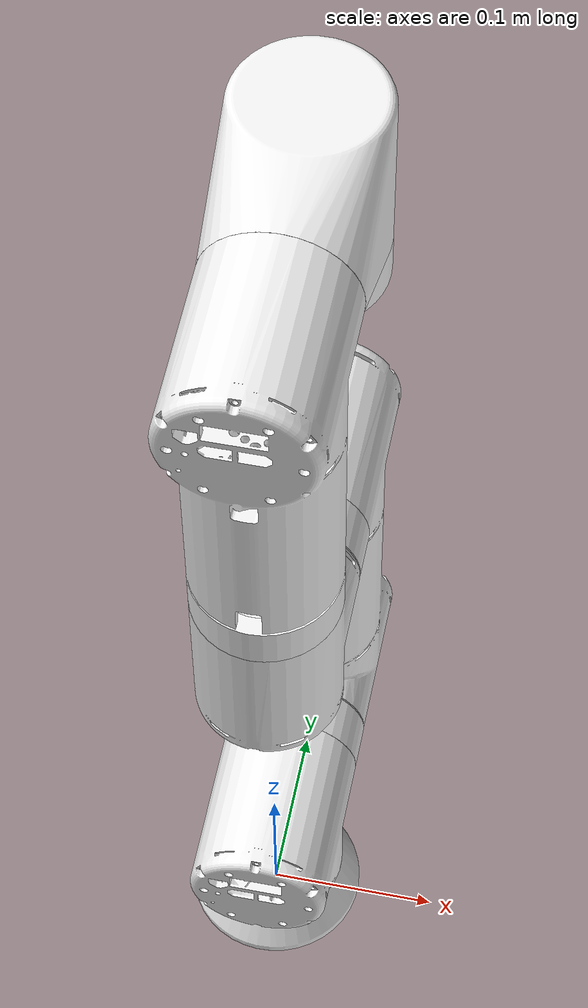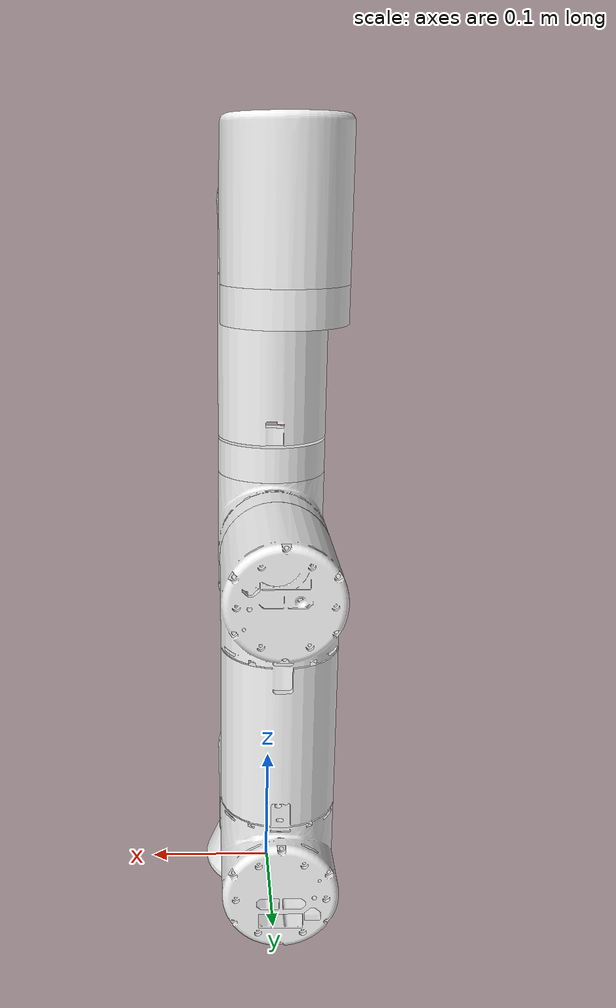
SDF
<sdf version='1.9'>
  <model name='pro_arm_5dof_550'>
    <joint name='pro_arm_base_joint' type='fixed'>
      <pose relative_to='__model__'>0 0 0 0 0 0</pose>
      <parent>world</parent>
      <child>pro_arm_base_link</child>
    </joint>
    <link name='pro_arm_base_link'>
      <pose relative_to='pro_arm_base_joint'>0 0 0 0 0 0</pose>
      <inertial>
        <pose>1.2874e-07 0.0085272 1.7438e-08 0 0 0</pose>
        <mass>0.082068000000000002</mass>
        <inertia>
          <ixx>7.6600999999999994e-05</ixx>
          <ixy>-1.2905000000000001e-10</ixy>
          <ixz>6.9943000000000006e-11</ixz>
          <iyy>0.00014336000000000001</iyy>
          <iyz>-2.3647999999999999e-11</iyz>
          <izz>7.6600000000000005e-05</izz>
        </inertia>
      </inertial>
      <collision name='pro_arm_base_link_collision'>
        <pose>0 0 0 0 0 0</pose>
        <geometry>
          <mesh>
            <scale>1 1 1</scale>
            <uri>meshes_550/collision/pro_arm_base_link.STL</uri>
          </mesh>
        </geometry>
        <surface>
          <contact>
            <ode/>
          </contact>
          <friction>
            <ode>
              <mu>0.29999999999999999</mu>
              <mu2>0.29999999999999999</mu2>
            </ode>
          </friction>
        </surface>
      </collision>
      <visual name='pro_arm_base_link_visual'>
        <pose>0 0 0 0 0 0</pose>
        <geometry>
          <mesh>
            <scale>1 1 1</scale>
            <uri>meshes_550/visual/pro_arm_base_link.STL</uri>
          </mesh>
        </geometry>
        <material>
          <diffuse>0.941175 0.941175 0.941175 1</diffuse>
          <ambient>0.941175 0.941175 0.941175 1</ambient>
        </material>
      </visual>
    </link>
    <joint name='pro_arm_joint_1' type='revolute'>
      <pose relative_to='pro_arm_base_link'>0 0 0.0315 -1.570792653576406 1.570792653605768 3.141592653589793</pose>
      <parent>pro_arm_base_link</parent>
      <child>pro_arm_link_1</child>
      <axis>
        <xyz>1 0 0</xyz>
        <limit>
          <lower>-3.1415926535897931</lower>
          <upper>3.1415926535897931</upper>
          <effort>54</effort>
          <velocity>0.78539999999999999</velocity>
        </limit>
        <dynamics>
          <damping>0.10000000000000001</damping>
          <friction>0.5</friction>
          <spring_reference>0</spring_reference>
          <spring_stiffness>0</spring_stiffness>
        </dynamics>
      </axis>
      <physics>
        <ode>
          <limit>
            <cfm>0</cfm>
            <erp>0.20000000000000001</erp>
          </limit>
        </ode>
      </physics>
    </joint>
    <link name='pro_arm_link_1'>
      <pose relative_to='pro_arm_joint_1'>0 0 0 0 0 0</pose>
      <inertial>
        <pose>-0.04167 -4.7565e-05 0.00324 0 0 0</pose>
        <mass>1.52</mass>
        <inertia>
          <ixx>0.00014346000000000001</ixx>
          <ixy>-4.3176999999999997e-08</ixy>
          <ixz>1.3566000000000001e-06</ixz>
          <iyy>0.00012596999999999999</iyy>
          <iyz>-1.5203999999999998e-08</iyz>
          <izz>0.00014254</izz>
        </inertia>
      </inertial>
      <collision name='pro_arm_link_1_collision'>
        <pose>0 0 0 0 0 0</pose>
        <geometry>
          <mesh>
            <scale>1 1 1</scale>
            <uri>meshes_550/collision/pro_arm_link_1.STL</uri>
          </mesh>
        </geometry>
        <surface>
          <contact>
            <ode/>
          </contact>
          <friction>
            <ode>
              <mu>0.29999999999999999</mu>
              <mu2>0.29999999999999999</mu2>
            </ode>
          </friction>
        </surface>
      </collision>
      <visual name='pro_arm_link_1_visual'>
        <pose>0 0 0 0 0 0</pose>
        <geometry>
          <mesh>
            <scale>1 1 1</scale>
            <uri>meshes_550/visual/pro_arm_link_1.STL</uri>
          </mesh>
        </geometry>
        <material>
          <diffuse>0.941175 0.941175 0.941175 1</diffuse>
          <ambient>0.941175 0.941175 0.941175 1</ambient>
        </material>
      </visual>
    </link>
    <joint name='pro_arm_joint_2' type='revolute'>
      <pose relative_to='pro_arm_link_1'>-0.05 0 -0.045583 -2.356192653568856 1.570792653635993 -1.570792653561293</pose>
      <parent>pro_arm_link_1</parent>
      <child>pro_arm_link_2</child>
      <axis>
        <xyz>1 0 0</xyz>
        <limit>
          <lower>-1.570796326794897</lower>
          <upper>1.570796326794897</upper>
          <effort>54</effort>
          <velocity>0.78539999999999999</velocity>
        </limit>
        <dynamics>
          <damping>0.10000000000000001</damping>
          <friction>0.5</friction>
          <spring_reference>0</spring_reference>
          <spring_stiffness>0</spring_stiffness>
        </dynamics>
      </axis>
      <physics>
        <ode>
          <limit>
            <cfm>0</cfm>
            <erp>0.20000000000000001</erp>
          </limit>
        </ode>
      </physics>
    </joint>
    <link name='pro_arm_link_2'>
      <pose relative_to='pro_arm_joint_2'>0 0 0 0 0 0</pose>
      <inertial>
        <pose>0.11278 0.068036 -0.06789100000000001 0 0 0</pose>
        <mass>3.1000000000000001</mass>
        <inertia>
          <ixx>0.00069567999999999995</ixx>
          <ixy>-1.3919000000000001e-10</ixy>
          <ixz>-4.9213000000000004e-10</ixz>
          <iyy>0.00059931000000000003</iyy>
          <iyz>1.5313999999999999e-05</iyz>
          <izz>0.00059896999999999999</izz>
        </inertia>
      </inertial>
      <collision name='pro_arm_link_2_collision'>
        <pose>0 0 0 0 0 0</pose>
        <geometry>
          <mesh>
            <scale>1 1 1</scale>
            <uri>meshes_550/collision/pro_arm_link_2.STL</uri>
          </mesh>
        </geometry>
        <surface>
          <contact>
            <ode/>
          </contact>
          <friction>
            <ode>
              <mu>0.29999999999999999</mu>
              <mu2>0.29999999999999999</mu2>
            </ode>
          </friction>
        </surface>
      </collision>
      <visual name='pro_arm_link_2_visual'>
        <pose>0 0 0 0 0 0</pose>
        <geometry>
          <mesh>
            <scale>1 1 1</scale>
            <uri>meshes_550/visual/pro_arm_link_2.STL</uri>
          </mesh>
        </geometry>
        <material>
          <diffuse>0.941175 0.941175 0.941175 1</diffuse>
          <ambient>0.941175 0.941175 0.941175 1</ambient>
        </material>
      </visual>
    </link>
    <joint name='pro_arm_joint_3' type='revolute'>
      <pose relative_to='pro_arm_link_2'>0 0.1591 -0.1591 1.5511 0 0</pose>
      <parent>pro_arm_link_2</parent>
      <child>pro_arm_link_3</child>
      <axis>
        <xyz>1 0 0</xyz>
        <limit>
          <lower>-2.0943951023931948</lower>
          <upper>2.0943951023931948</upper>
          <effort>54</effort>
          <velocity>0.78539999999999999</velocity>
        </limit>
        <dynamics>
          <damping>0.10000000000000001</damping>
          <friction>0.5</friction>
          <spring_reference>0</spring_reference>
          <spring_stiffness>0</spring_stiffness>
        </dynamics>
      </axis>
      <physics>
        <ode>
          <limit>
            <cfm>0</cfm>
            <erp>0.20000000000000001</erp>
          </limit>
        </ode>
      </physics>
    </joint>
    <link name='pro_arm_link_3'>
      <pose relative_to='pro_arm_joint_3'>0 0 0 0 0 0</pose>
      <inertial>
        <pose>-0.00969205882352941 0.04713268529411765 0.04904268823529413 0 0 0</pose>
        <mass>2.7200000000000002</mass>
        <inertia>
          <ixx>0.01762893189011823</ixx>
          <ixy>0.0058169771822503538</ixy>
          <ixz>0.0060681857174098826</ixz>
          <iyy>0.01365467066820941</iyy>
          <iyz>-0.0084282645144275279</iyz>
          <izz>0.012941220753986</izz>
        </inertia>
      </inertial>
      <collision name='pro_arm_link_3_collision'>
        <pose>0 0 0 0 0 0</pose>
        <geometry>
          <mesh>
            <scale>1 1 1</scale>
            <uri>meshes_550/collision/pro_arm_link_3.STL</uri>
          </mesh>
        </geometry>
        <surface>
          <contact>
            <ode/>
          </contact>
          <friction>
            <ode>
              <mu>0.29999999999999999</mu>
              <mu2>0.29999999999999999</mu2>
            </ode>
          </friction>
        </surface>
      </collision>
      <collision name='pro_arm_link_3_fixed_joint_lump__pro_arm_link_4_collision_1'>
        <pose>-0.05 0 0 0 0 0</pose>
        <geometry>
          <mesh>
            <scale>1 1 1</scale>
            <uri>meshes_550/collision/pro_arm_link_4.STL</uri>
          </mesh>
        </geometry>
        <surface>
          <contact>
            <ode/>
          </contact>
          <friction>
            <ode>
              <mu>0.29999999999999999</mu>
              <mu2>0.29999999999999999</mu2>
            </ode>
          </friction>
        </surface>
      </collision>
      <visual name='pro_arm_link_3_visual'>
        <pose>0 0 0 0 0 0</pose>
        <geometry>
          <mesh>
            <scale>1 1 1</scale>
            <uri>meshes_550/visual/pro_arm_link_3.STL</uri>
          </mesh>
        </geometry>
        <material>
          <diffuse>0.941175 0.941175 0.941175 1</diffuse>
          <ambient>0.941175 0.941175 0.941175 1</ambient>
        </material>
      </visual>
      <visual name='pro_arm_link_3_fixed_joint_lump__pro_arm_link_4_visual_1'>
        <pose>-0.05 0 0 0 0 0</pose>
        <geometry>
          <mesh>
            <scale>1 1 1</scale>
            <uri>meshes_550/visual/pro_arm_link_4.STL</uri>
          </mesh>
        </geometry>
        <material>
          <diffuse>0.941175 0.941175 0.941175 1</diffuse>
          <ambient>0.941175 0.941175 0.941175 1</ambient>
        </material>
      </visual>
    </link>
    <joint name='pro_arm_joint_5' type='revolute'>
      <pose relative_to='pro_arm_link_3'>-0.001583000000000001 -0.17257 -0.1795 0.80509 0 0</pose>
      <parent>pro_arm_link_3</parent>
      <child>pro_arm_link_5</child>
      <axis>
        <xyz>1 0 0</xyz>
        <limit>
          <lower>-3.1415926535897931</lower>
          <upper>3.1415926535897931</upper>
          <effort>19</effort>
          <velocity>0.78539999999999999</velocity>
        </limit>
        <dynamics>
          <damping>0.10000000000000001</damping>
          <friction>0.5</friction>
          <spring_reference>0</spring_reference>
          <spring_stiffness>0</spring_stiffness>
        </dynamics>
      </axis>
      <physics>
        <ode>
          <limit>
            <cfm>0</cfm>
            <erp>0.20000000000000001</erp>
          </limit>
        </ode>
      </physics>
    </joint>
    <link name='pro_arm_link_5'>
      <pose relative_to='pro_arm_joint_5'>0 0 0 0 0 0</pose>
      <inertial>
        <pose>-0.0057446 1 -3.2832e-05 0 0 0</pose>
        <mass>1.1000000000000001</mass>
        <inertia>
          <ixx>0.00024824999999999999</ixx>
          <ixy>-1.2711e-06</ixy>
          <ixz>3.0302999999999997e-08</ixz>
          <iyy>0.00019935999999999999</iyy>
          <iyz>-3.9256999999999999e-08</iyz>
          <izz>0.00018289000000000001</izz>
        </inertia>
      </inertial>
      <collision name='pro_arm_link_5_collision'>
        <pose>0 0 0 0 0 0</pose>
        <geometry>
          <mesh>
            <scale>1 1 1</scale>
            <uri>meshes_550/collision/pro_arm_link_5.STL</uri>
          </mesh>
        </geometry>
        <surface>
          <contact>
            <ode/>
          </contact>
          <friction>
            <ode>
              <mu>0.29999999999999999</mu>
              <mu2>0.29999999999999999</mu2>
            </ode>
          </friction>
        </surface>
      </collision>
      <visual name='pro_arm_link_5_visual'>
        <pose>0 0 0 0 0 0</pose>
        <geometry>
          <mesh>
            <scale>1 1 1</scale>
            <uri>meshes_550/visual/pro_arm_link_5.STL</uri>
          </mesh>
        </geometry>
        <material>
          <diffuse>0.941175 0.941175 0.941175 1</diffuse>
          <ambient>0.941175 0.941175 0.941175 1</ambient>
        </material>
      </visual>
    </link>
    <joint name='pro_arm_joint_6' type='revolute'>
      <pose relative_to='pro_arm_link_5'>0.076 0.048 0 -1.570792653617749 1.570792653666219 -1.570792653625737</pose>
      <parent>pro_arm_link_5</parent>
      <child>pro_arm_link_6</child>
      <axis>
        <xyz>0 1 0</xyz>
        <limit>
          <lower>-3.1415926535897931</lower>
          <upper>3.1415926535897931</upper>
          <effort>19</effort>
          <velocity>0.78539999999999999</velocity>
        </limit>
        <dynamics>
          <damping>0.10000000000000001</damping>
          <friction>0.5</friction>
          <spring_reference>0</spring_reference>
          <spring_stiffness>0</spring_stiffness>
        </dynamics>
      </axis>
      <physics>
        <ode>
          <limit>
            <cfm>0</cfm>
            <erp>0.20000000000000001</erp>
          </limit>
        </ode>
      </physics>
    </joint>
    <link name='pro_arm_link_6'>
      <pose relative_to='pro_arm_joint_6'>0 0 0 0 0 0</pose>
      <inertial>
        <pose>3.5805e-15 0.0125 0.00019576 0 0 0</pose>
        <mass>0.080000000000000002</mass>
        <inertia>
          <ixx>5.4307e-05</ixx>
          <ixy>-1.1438e-20</ixy>
          <ixz>1.3528999999999999e-17</ixz>
          <iyy>0.00010076</iyy>
          <iyz>-1.6647999999999999e-22</iyz>
          <izz>5.4873000000000001e-05</izz>
        </inertia>
      </inertial>
      <collision name='pro_arm_link_6_collision'>
        <pose>0 0 0 0 0 0</pose>
        <geometry>
          <mesh>
            <scale>1 1 1</scale>
            <uri>meshes_550/collision/pro_arm_link_6.STL</uri>
          </mesh>
        </geometry>
        <surface>
          <contact>
            <ode/>
          </contact>
          <friction>
            <ode>
              <mu>0.29999999999999999</mu>
              <mu2>0.29999999999999999</mu2>
            </ode>
          </friction>
        </surface>
      </collision>
      <visual name='pro_arm_link_6_visual'>
        <pose>0 0 0 0 0 0</pose>
        <geometry>
          <mesh>
            <scale>1 1 1</scale>
            <uri>meshes_550/visual/pro_arm_link_6.STL</uri>
          </mesh>
        </geometry>
        <material>
          <diffuse>0.941175 0.941175 0.941175 1</diffuse>
          <ambient>0.941175 0.941175 0.941175 1</ambient>
        </material>
      </visual>
    </link>
    <plugin name='ign_ros2_control::IgnitionROS2ControlPlugin' filename='ign_ros2_control-system'>
      <parameters>/home/geraldinebc/Documents/GIT/local_pro_tests/install/pro_arm_moveit/share/pro_arm_moveit/config/controllers_5dof.yaml</parameters>
    </plugin>
    <frame name='pro_arm_joint_4' attached_to='pro_arm_link_3'>
      <pose>-0.05 0 0 0 -0 0</pose>
    </frame>
    <frame name='pro_arm_link_4' attached_to='pro_arm_joint_4'/>
    <frame name='pro_arm_ee_virtual_joint' attached_to='pro_arm_link_6'>
      <pose>0 0.025 0 0 -0 0</pose>
    </frame>
    <frame name='pro_arm_ee' attached_to='pro_arm_ee_virtual_joint'/>
  </model>
</sdf>
